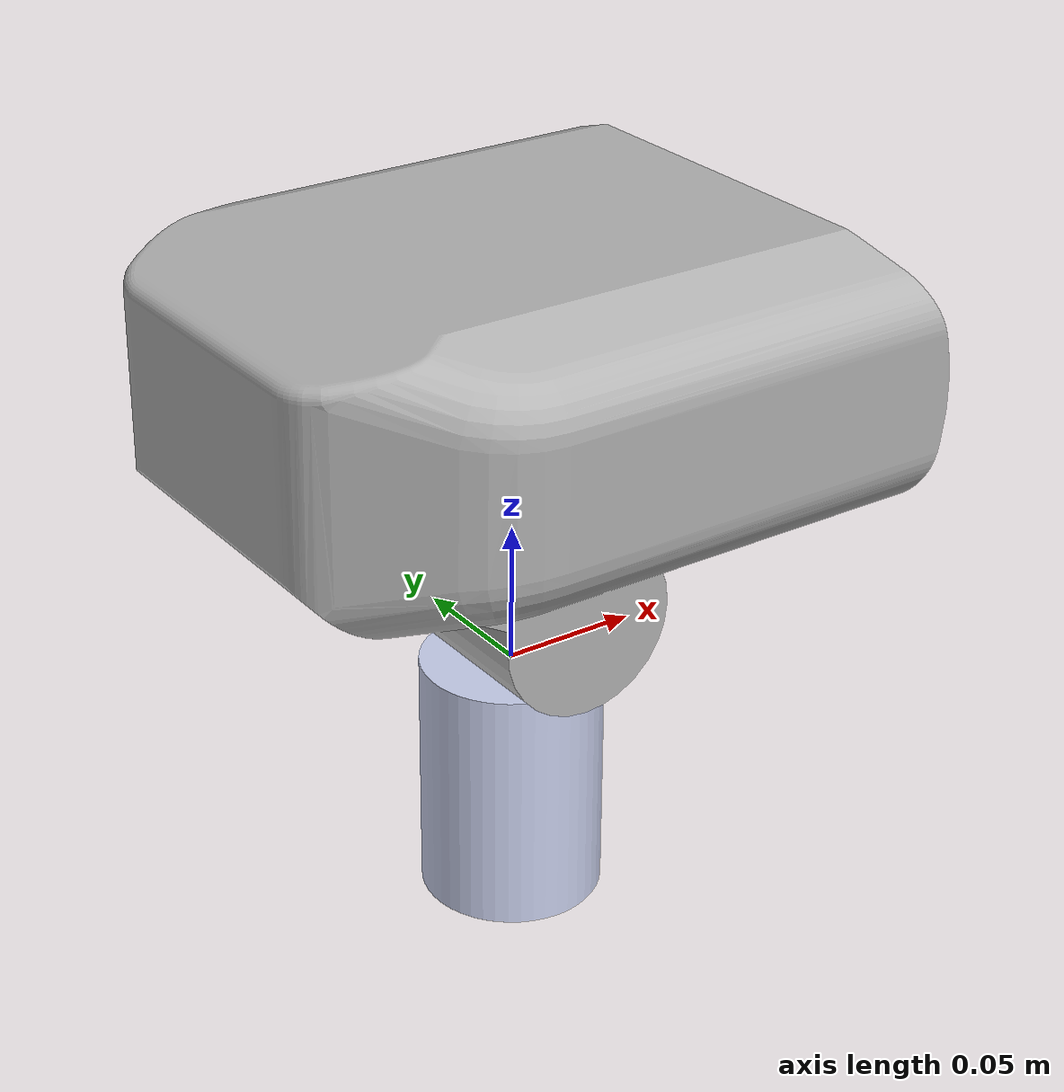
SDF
<?xml version='1.0'?>
<sdf version='1.6'>
  <model name='TEO_head'>

    <link name='AxialNeck_link'>
      <pose>0 0 0 0 -0 0</pose>
      <inertial>
        <pose>0.000302 0.000193 -0.0452 0 -0 0</pose>
        <mass>1</mass>
        <inertia>
          <ixx>0.000939063</ixx>
          <ixy>0</ixy>
          <ixz>0</ixz>
          <iyy>0.000939063</iyy>
          <iyz>0</iyz>
          <izz>0.000528125</izz>
        </inertia>
      </inertial>
      <visual name='AxialNeck_visual'>
        <geometry>
          <mesh>
            <uri>model://teo/meshes/visual/AxialNeck.dae</uri>
          </mesh>
        </geometry>
        <material>
          <ambient>0.792157 0.819608 0.933333 1</ambient>
          <diffuse>0.792157 0.819608 0.933333 1</diffuse>
          <specular>0.633726 0.65568602 0.74666703 1</specular>
          <emissive>0 0 0 1</emissive>
        </material>
      </visual>
      <collision name='AxialNeck_collision'>
        <geometry>
          <mesh>
            <uri>model://teo/meshes/collision/AxialNeck.stl</uri>
          </mesh>
        </geometry>
      </collision>
    </link>

    <joint name='AxialNeck' type='revolute'>
      <parent>TEO_trunk::FrontalTrunk_link</parent>
      <child>TEO_head::AxialNeck_link</child>
      <axis>
        <xyz>0 0 1</xyz>
        <limit>
          <lower>-1.22</lower>
          <upper>1.22</upper>
        </limit>
        <dynamics>
          <damping>0.001</damping>
          <friction>0.7</friction>
        </dynamics>
      </axis>
    </joint>

    <link name='FrontalNeck_link'>
      <pose>0 0 0.0325 0 -0 0</pose>
      <inertial>
        <pose>-0.002729 -0.000086 0.067027 0 -0 0</pose>
        <mass>2</mass>
        <inertia>
          <ixx>0.007599322</ixx>
          <ixy>5.83e-09</ixy>
          <ixz>0.0000658</ixz>
          <iyy>0.008325273</iyy>
          <iyz>-7.43e-09</iyz>
          <izz>0.011403464</izz>
        </inertia>
      </inertial>
      <visual name='FrontalNeck_visual'>
        <geometry>
          <mesh>
            <uri>model://teo/meshes/visual/FrontalNeck.dae</uri>
          </mesh>
        </geometry>
        <material>
          <ambient>1 1 1 1</ambient>
          <diffuse>0.7 0.7 0.7 1</diffuse>
          <specular>0.2 0.2 0.2 1</specular>
          <emissive>0 0 0 1</emissive>
        </material>
      </visual>
      <collision name='FrontalNeck_collision'>
        <geometry>
          <mesh>
            <uri>model://teo/meshes/collision/FrontalNeck.stl</uri>
          </mesh>
        </geometry>
      </collision>
      <sensor name='xtion_rgbd' type='depth'>
        <pose>0 0 0 0 -0 0</pose>
        <camera>
          <horizontal_fov>1.01</horizontal_fov>
          <image>
            <width>640</width>
            <height>480</height>
          </image>
          <clip>
            <near>0.8</near>
            <far>3.5</far>
          </clip>
          <lens>
            <intrinsics>
              <fx>525</fx>
              <fy>525</fy>
              <cx>319.5</cx>
              <cy>239.5</cy>
            </intrinsics>
          </lens>
        </camera>
        <always_on>1</always_on>
        <update_rate>30</update_rate>
        <visualize>1</visualize>
        <plugin name='xtion_rgbd_plugin' filename='libgazebo_yarp_depthCamera.so'>
          <yarpConfigurationString>(yarpDeviceName depthcamera) (disableImplicitNetworkWrapper)</yarpConfigurationString>
        </plugin>
      </sensor>
    </link>

    <joint name='FrontalNeck' type='revolute'>
      <parent>TEO_head::AxialNeck_link</parent>
      <child>TEO_head::FrontalNeck_link</child>
      <axis>
        <xyz>0 1 0</xyz>
        <limit>
          <lower>-0.51</lower>
          <upper>0.15</upper>
        </limit>
        <dynamics>
          <damping>0.001</damping>
          <friction>0.7</friction>
        </dynamics>
      </axis>
    </joint>

    <plugin name='controlboard_head' filename='libgazebo_yarp_controlboard.so'>
      <yarpConfigurationFile>model://teo/conf/gazebo_teo_head.ini</yarpConfigurationFile>
    </plugin>

  </model>
</sdf>
